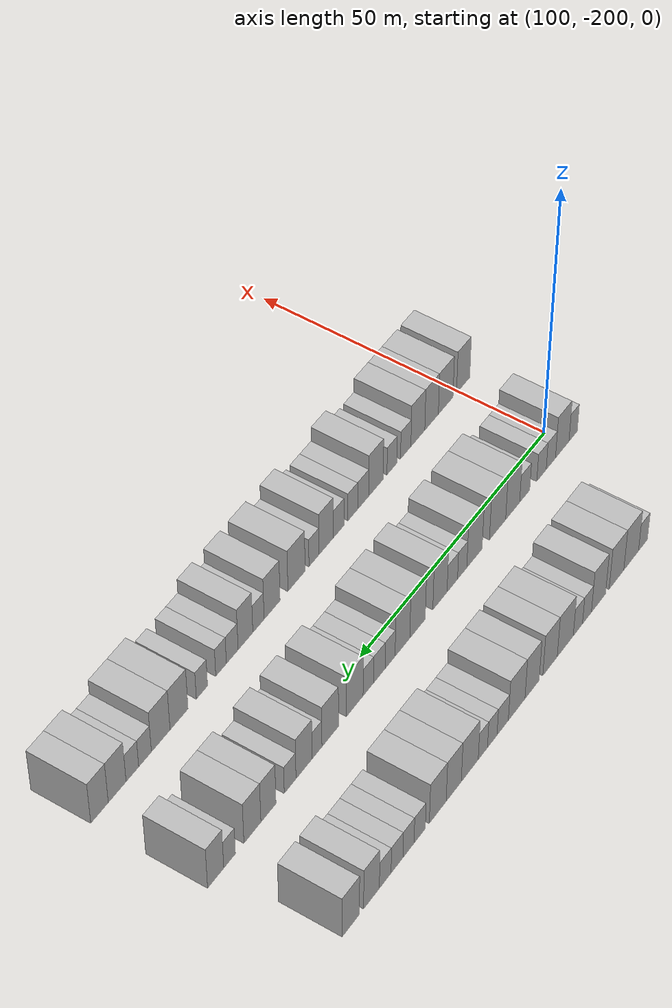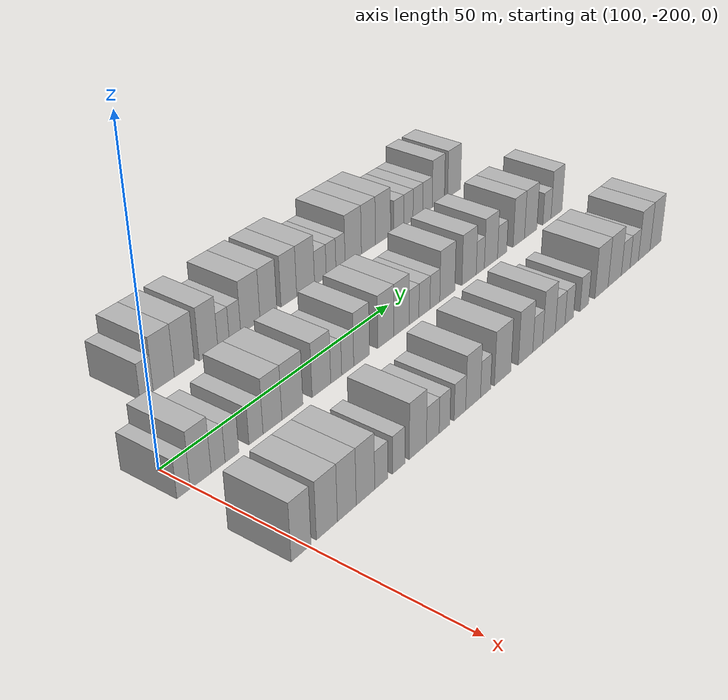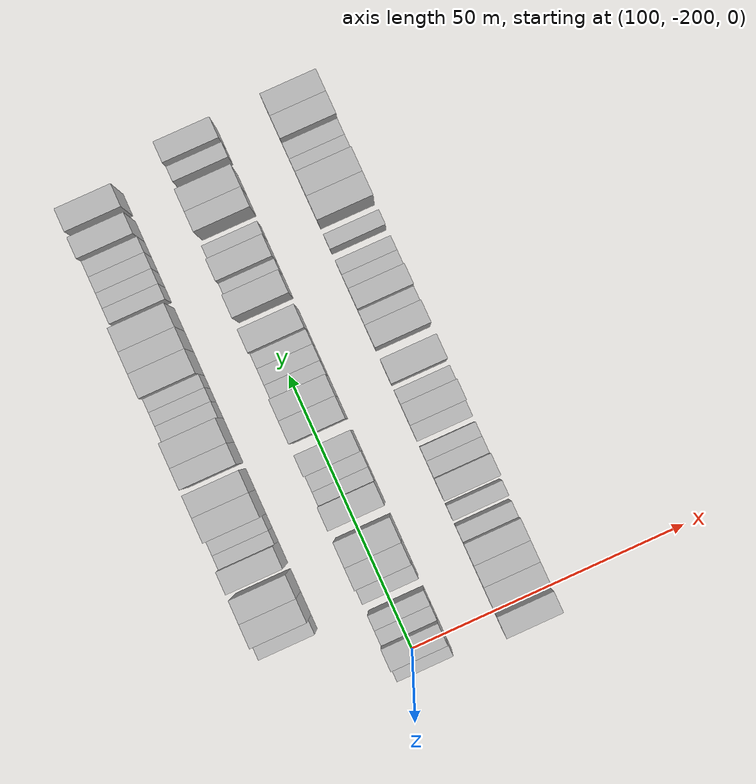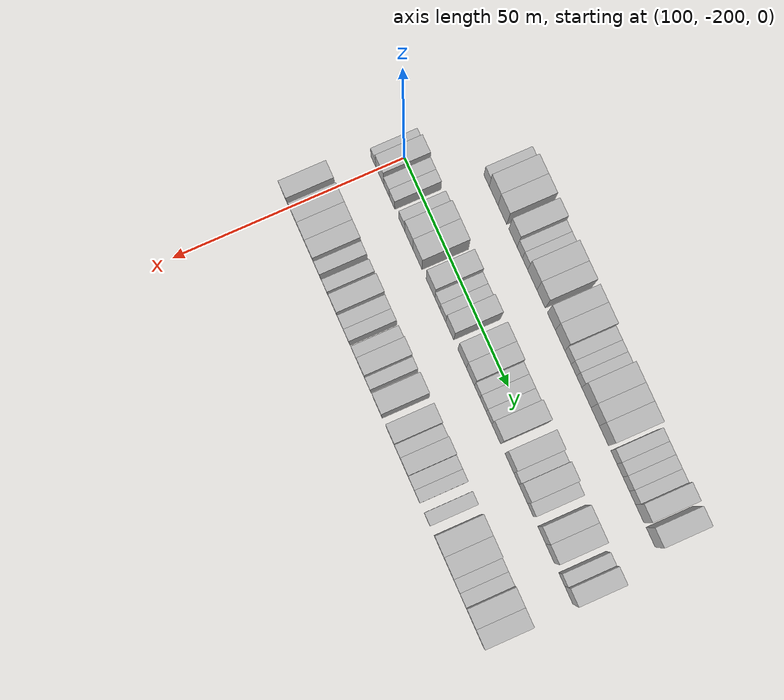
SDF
<sdf version="1.6">
 <world name="default">
  <model name="building_538">
   <static>1</static>
   <pose>82.0000 -189.1456 0 0.000000 0.000000 0.000000</pose>
   <link name="link">
    <pose>0 0 3.00 0 0 0</pose>
    <collision name="collision"><geometry><box><size>10.0000 2.5869 6.0000</size></box></geometry></collision>
    <visual name="visual">
     <cast_shadows>0</cast_shadows>
     <geometry><box><size>10.0000 2.5869 6.0000</size></box></geometry>
     <material>
      <script>
       <uri>model://HANNAS_wall/materials/scripts</uri>
       <uri>model://HANNAS_wall/materials/textures</uri>
       <name>vrc/HANNAS_wall</name>
      </script>
     </material>
    </visual>
   </link>
  </model>
  <model name="building_539">
   <static>1</static>
   <pose>82.0000 -185.7455 0 0.000000 0.000000 0.000000</pose>
   <link name="link">
    <pose>0 0 4.50 0 0 0</pose>
    <collision name="collision"><geometry><box><size>10.0000 4.2132 9.0000</size></box></geometry></collision>
    <visual name="visual">
     <cast_shadows>0</cast_shadows>
     <geometry><box><size>10.0000 4.2132 9.0000</size></box></geometry>
     <material>
      <script>
       <uri>model://HANNAS_wall/materials/scripts</uri>
       <uri>model://HANNAS_wall/materials/textures</uri>
       <name>vrc/HANNAS_wall</name>
      </script>
     </material>
    </visual>
   </link>
  </model>
  <model name="building_540">
   <static>1</static>
   <pose>82.0000 -181.5545 0 0.000000 0.000000 0.000000</pose>
   <link name="link">
    <pose>0 0 4.50 0 0 0</pose>
    <collision name="collision"><geometry><box><size>10.0000 4.1687 9.0000</size></box></geometry></collision>
    <visual name="visual">
     <cast_shadows>0</cast_shadows>
     <geometry><box><size>10.0000 4.1687 9.0000</size></box></geometry>
     <material>
      <script>
       <uri>model://HANNAS_wall/materials/scripts</uri>
       <uri>model://HANNAS_wall/materials/textures</uri>
       <name>vrc/HANNAS_wall</name>
      </script>
     </material>
    </visual>
   </link>
  </model>
  <model name="building_541">
   <static>1</static>
   <pose>82.0000 -176.4851 0 0.000000 0.000000 0.000000</pose>
   <link name="link">
    <pose>0 0 4.50 0 0 0</pose>
    <collision name="collision"><geometry><box><size>10.0000 3.9702 9.0000</size></box></geometry></collision>
    <visual name="visual">
     <cast_shadows>0</cast_shadows>
     <geometry><box><size>10.0000 3.9702 9.0000</size></box></geometry>
     <material>
      <script>
       <uri>model://HANNAS_wall/materials/scripts</uri>
       <uri>model://HANNAS_wall/materials/textures</uri>
       <name>vrc/HANNAS_wall</name>
      </script>
     </material>
    </visual>
   </link>
  </model>
  <model name="building_542">
   <static>1</static>
   <pose>82.0000 -173.2565 0 0.000000 0.000000 0.000000</pose>
   <link name="link">
    <pose>0 0 3.00 0 0 0</pose>
    <collision name="collision"><geometry><box><size>10.0000 2.4871 6.0000</size></box></geometry></collision>
    <visual name="visual">
     <cast_shadows>0</cast_shadows>
     <geometry><box><size>10.0000 2.4871 6.0000</size></box></geometry>
     <material>
      <script>
       <uri>model://HANNAS_wall/materials/scripts</uri>
       <uri>model://HANNAS_wall/materials/textures</uri>
       <name>vrc/HANNAS_wall</name>
      </script>
     </material>
    </visual>
   </link>
  </model>
  <model name="building_543">
   <static>1</static>
   <pose>82.0000 -170.7408 0 0.000000 0.000000 0.000000</pose>
   <link name="link">
    <pose>0 0 3.00 0 0 0</pose>
    <collision name="collision"><geometry><box><size>10.0000 2.5442 6.0000</size></box></geometry></collision>
    <visual name="visual">
     <cast_shadows>0</cast_shadows>
     <geometry><box><size>10.0000 2.5442 6.0000</size></box></geometry>
     <material>
      <script>
       <uri>model://HANNAS_wall/materials/scripts</uri>
       <uri>model://HANNAS_wall/materials/textures</uri>
       <name>vrc/HANNAS_wall</name>
      </script>
     </material>
    </visual>
   </link>
  </model>
  <model name="building_544">
   <static>1</static>
   <pose>82.0000 -167.2731 0 0.000000 0.000000 0.000000</pose>
   <link name="link">
    <pose>0 0 4.50 0 0 0</pose>
    <collision name="collision"><geometry><box><size>10.0000 4.3912 9.0000</size></box></geometry></collision>
    <visual name="visual">
     <cast_shadows>0</cast_shadows>
     <geometry><box><size>10.0000 4.3912 9.0000</size></box></geometry>
     <material>
      <script>
       <uri>model://HANNAS_wall/materials/scripts</uri>
       <uri>model://HANNAS_wall/materials/textures</uri>
       <name>vrc/HANNAS_wall</name>
      </script>
     </material>
    </visual>
   </link>
  </model>
  <model name="building_545">
   <static>1</static>
   <pose>82.0000 -163.1152 0 0.000000 0.000000 0.000000</pose>
   <link name="link">
    <pose>0 0 4.50 0 0 0</pose>
    <collision name="collision"><geometry><box><size>10.0000 3.9246 9.0000</size></box></geometry></collision>
    <visual name="visual">
     <cast_shadows>0</cast_shadows>
     <geometry><box><size>10.0000 3.9246 9.0000</size></box></geometry>
     <material>
      <script>
       <uri>model://HANNAS_wall/materials/scripts</uri>
       <uri>model://HANNAS_wall/materials/textures</uri>
       <name>vrc/HANNAS_wall</name>
      </script>
     </material>
    </visual>
   </link>
  </model>
  <model name="building_546">
   <static>1</static>
   <pose>82.0000 -158.2578 0 0.000000 0.000000 0.000000</pose>
   <link name="link">
    <pose>0 0 4.50 0 0 0</pose>
    <collision name="collision"><geometry><box><size>10.0000 3.7901 9.0000</size></box></geometry></collision>
    <visual name="visual">
     <cast_shadows>0</cast_shadows>
     <geometry><box><size>10.0000 3.7901 9.0000</size></box></geometry>
     <material>
      <script>
       <uri>model://HANNAS_wall/materials/scripts</uri>
       <uri>model://HANNAS_wall/materials/textures</uri>
       <name>vrc/HANNAS_wall</name>
      </script>
     </material>
    </visual>
   </link>
  </model>
  <model name="building_547">
   <static>1</static>
   <pose>82.0000 -154.1495 0 0.000000 0.000000 0.000000</pose>
   <link name="link">
    <pose>0 0 4.50 0 0 0</pose>
    <collision name="collision"><geometry><box><size>10.0000 4.4265 9.0000</size></box></geometry></collision>
    <visual name="visual">
     <cast_shadows>0</cast_shadows>
     <geometry><box><size>10.0000 4.4265 9.0000</size></box></geometry>
     <material>
      <script>
       <uri>model://HANNAS_wall/materials/scripts</uri>
       <uri>model://HANNAS_wall/materials/textures</uri>
       <name>vrc/HANNAS_wall</name>
      </script>
     </material>
    </visual>
   </link>
  </model>
  <model name="building_548">
   <static>1</static>
   <pose>82.0000 -150.4503 0 0.000000 0.000000 0.000000</pose>
   <link name="link">
    <pose>0 0 3.00 0 0 0</pose>
    <collision name="collision"><geometry><box><size>10.0000 2.9718 6.0000</size></box></geometry></collision>
    <visual name="visual">
     <cast_shadows>0</cast_shadows>
     <geometry><box><size>10.0000 2.9718 6.0000</size></box></geometry>
     <material>
      <script>
       <uri>model://HANNAS_wall/materials/scripts</uri>
       <uri>model://HANNAS_wall/materials/textures</uri>
       <name>vrc/HANNAS_wall</name>
      </script>
     </material>
    </visual>
   </link>
  </model>
  <model name="building_549">
   <static>1</static>
   <pose>82.0000 -147.7179 0 0.000000 0.000000 0.000000</pose>
   <link name="link">
    <pose>0 0 3.00 0 0 0</pose>
    <collision name="collision"><geometry><box><size>10.0000 2.4931 6.0000</size></box></geometry></collision>
    <visual name="visual">
     <cast_shadows>0</cast_shadows>
     <geometry><box><size>10.0000 2.4931 6.0000</size></box></geometry>
     <material>
      <script>
       <uri>model://HANNAS_wall/materials/scripts</uri>
       <uri>model://HANNAS_wall/materials/textures</uri>
       <name>vrc/HANNAS_wall</name>
      </script>
     </material>
    </visual>
   </link>
  </model>
  <model name="building_550">
   <static>1</static>
   <pose>82.0000 -145.2648 0 0.000000 0.000000 0.000000</pose>
   <link name="link">
    <pose>0 0 3.00 0 0 0</pose>
    <collision name="collision"><geometry><box><size>10.0000 2.4132 6.0000</size></box></geometry></collision>
    <visual name="visual">
     <cast_shadows>0</cast_shadows>
     <geometry><box><size>10.0000 2.4132 6.0000</size></box></geometry>
     <material>
      <script>
       <uri>model://HANNAS_wall/materials/scripts</uri>
       <uri>model://HANNAS_wall/materials/textures</uri>
       <name>vrc/HANNAS_wall</name>
      </script>
     </material>
    </visual>
   </link>
  </model>
  <model name="building_551">
   <static>1</static>
   <pose>82.0000 -141.8762 0 0.000000 0.000000 0.000000</pose>
   <link name="link">
    <pose>0 0 4.50 0 0 0</pose>
    <collision name="collision"><geometry><box><size>10.0000 4.3640 9.0000</size></box></geometry></collision>
    <visual name="visual">
     <cast_shadows>0</cast_shadows>
     <geometry><box><size>10.0000 4.3640 9.0000</size></box></geometry>
     <material>
      <script>
       <uri>model://HANNAS_wall/materials/scripts</uri>
       <uri>model://HANNAS_wall/materials/textures</uri>
       <name>vrc/HANNAS_wall</name>
      </script>
     </material>
    </visual>
   </link>
  </model>
  <model name="building_552">
   <static>1</static>
   <pose>82.0000 -137.7638 0 0.000000 0.000000 0.000000</pose>
   <link name="link">
    <pose>0 0 4.50 0 0 0</pose>
    <collision name="collision"><geometry><box><size>10.0000 3.8608 9.0000</size></box></geometry></collision>
    <visual name="visual">
     <cast_shadows>0</cast_shadows>
     <geometry><box><size>10.0000 3.8608 9.0000</size></box></geometry>
     <material>
      <script>
       <uri>model://HANNAS_wall/materials/scripts</uri>
       <uri>model://HANNAS_wall/materials/textures</uri>
       <name>vrc/HANNAS_wall</name>
      </script>
     </material>
    </visual>
   </link>
  </model>
  <model name="building_553">
   <static>1</static>
   <pose>82.0000 -133.7019 0 0.000000 0.000000 0.000000</pose>
   <link name="link">
    <pose>0 0 4.50 0 0 0</pose>
    <collision name="collision"><geometry><box><size>10.0000 4.2629 9.0000</size></box></geometry></collision>
    <visual name="visual">
     <cast_shadows>0</cast_shadows>
     <geometry><box><size>10.0000 4.2629 9.0000</size></box></geometry>
     <material>
      <script>
       <uri>model://HANNAS_wall/materials/scripts</uri>
       <uri>model://HANNAS_wall/materials/textures</uri>
       <name>vrc/HANNAS_wall</name>
      </script>
     </material>
    </visual>
   </link>
  </model>
  <model name="building_554">
   <static>1</static>
   <pose>82.0000 -129.1655 0 0.000000 0.000000 0.000000</pose>
   <link name="link">
    <pose>0 0 3.00 0 0 0</pose>
    <collision name="collision"><geometry><box><size>10.0000 2.8100 6.0000</size></box></geometry></collision>
    <visual name="visual">
     <cast_shadows>0</cast_shadows>
     <geometry><box><size>10.0000 2.8100 6.0000</size></box></geometry>
     <material>
      <script>
       <uri>model://HANNAS_wall/materials/scripts</uri>
       <uri>model://HANNAS_wall/materials/textures</uri>
       <name>vrc/HANNAS_wall</name>
      </script>
     </material>
    </visual>
   </link>
  </model>
  <model name="building_555">
   <static>1</static>
   <pose>82.0000 -126.3873 0 0.000000 0.000000 0.000000</pose>
   <link name="link">
    <pose>0 0 3.00 0 0 0</pose>
    <collision name="collision"><geometry><box><size>10.0000 2.7464 6.0000</size></box></geometry></collision>
    <visual name="visual">
     <cast_shadows>0</cast_shadows>
     <geometry><box><size>10.0000 2.7464 6.0000</size></box></geometry>
     <material>
      <script>
       <uri>model://HANNAS_wall/materials/scripts</uri>
       <uri>model://HANNAS_wall/materials/textures</uri>
       <name>vrc/HANNAS_wall</name>
      </script>
     </material>
    </visual>
   </link>
  </model>
  <model name="building_556">
   <static>1</static>
   <pose>82.0000 -123.5469 0 0.000000 0.000000 0.000000</pose>
   <link name="link">
    <pose>0 0 3.00 0 0 0</pose>
    <collision name="collision"><geometry><box><size>10.0000 2.9344 6.0000</size></box></geometry></collision>
    <visual name="visual">
     <cast_shadows>0</cast_shadows>
     <geometry><box><size>10.0000 2.9344 6.0000</size></box></geometry>
     <material>
      <script>
       <uri>model://HANNAS_wall/materials/scripts</uri>
       <uri>model://HANNAS_wall/materials/textures</uri>
       <name>vrc/HANNAS_wall</name>
      </script>
     </material>
    </visual>
   </link>
  </model>
  <model name="building_557">
   <static>1</static>
   <pose>82.0000 -120.6530 0 0.000000 0.000000 0.000000</pose>
   <link name="link">
    <pose>0 0 3.00 0 0 0</pose>
    <collision name="collision"><geometry><box><size>10.0000 2.8533 6.0000</size></box></geometry></collision>
    <visual name="visual">
     <cast_shadows>0</cast_shadows>
     <geometry><box><size>10.0000 2.8533 6.0000</size></box></geometry>
     <material>
      <script>
       <uri>model://HANNAS_wall/materials/scripts</uri>
       <uri>model://HANNAS_wall/materials/textures</uri>
       <name>vrc/HANNAS_wall</name>
      </script>
     </material>
    </visual>
   </link>
  </model>
  <model name="building_558">
   <static>1</static>
   <pose>82.0000 -117.3178 0 0.000000 0.000000 0.000000</pose>
   <link name="link">
    <pose>0 0 4.50 0 0 0</pose>
    <collision name="collision"><geometry><box><size>10.0000 3.8171 9.0000</size></box></geometry></collision>
    <visual name="visual">
     <cast_shadows>0</cast_shadows>
     <geometry><box><size>10.0000 3.8171 9.0000</size></box></geometry>
     <material>
      <script>
       <uri>model://HANNAS_wall/materials/scripts</uri>
       <uri>model://HANNAS_wall/materials/textures</uri>
       <name>vrc/HANNAS_wall</name>
      </script>
     </material>
    </visual>
   </link>
  </model>
  <model name="building_559">
   <static>1</static>
   <pose>82.0000 -112.3415 0 0.000000 0.000000 0.000000</pose>
   <link name="link">
    <pose>0 0 4.50 0 0 0</pose>
    <collision name="collision"><geometry><box><size>10.0000 4.1355 9.0000</size></box></geometry></collision>
    <visual name="visual">
     <cast_shadows>0</cast_shadows>
     <geometry><box><size>10.0000 4.1355 9.0000</size></box></geometry>
     <material>
      <script>
       <uri>model://HANNAS_wall/materials/scripts</uri>
       <uri>model://HANNAS_wall/materials/textures</uri>
       <name>vrc/HANNAS_wall</name>
      </script>
     </material>
    </visual>
   </link>
  </model>
  <model name="building_717">
   <static>1</static>
   <pose>101.0000 -201.6408 0 0.000000 0.000000 0.000000</pose>
   <link name="link">
    <pose>0 0 3.00 0 0 0</pose>
    <collision name="collision"><geometry><box><size>10.0000 2.4165 6.0000</size></box></geometry></collision>
    <visual name="visual">
     <cast_shadows>0</cast_shadows>
     <geometry><box><size>10.0000 2.4165 6.0000</size></box></geometry>
     <material>
      <script>
       <uri>model://HANNAS_wall/materials/scripts</uri>
       <uri>model://HANNAS_wall/materials/textures</uri>
       <name>vrc/HANNAS_wall</name>
      </script>
     </material>
    </visual>
   </link>
  </model>
  <model name="building_718">
   <static>1</static>
   <pose>101.0000 -198.4860 0 0.000000 0.000000 0.000000</pose>
   <link name="link">
    <pose>0 0 4.50 0 0 0</pose>
    <collision name="collision"><geometry><box><size>10.0000 3.8929 9.0000</size></box></geometry></collision>
    <visual name="visual">
     <cast_shadows>0</cast_shadows>
     <geometry><box><size>10.0000 3.8929 9.0000</size></box></geometry>
     <material>
      <script>
       <uri>model://HANNAS_wall/materials/scripts</uri>
       <uri>model://HANNAS_wall/materials/textures</uri>
       <name>vrc/HANNAS_wall</name>
      </script>
     </material>
    </visual>
   </link>
  </model>
  <model name="building_719">
   <static>1</static>
   <pose>101.0000 -195.2122 0 0.000000 0.000000 0.000000</pose>
   <link name="link">
    <pose>0 0 3.00 0 0 0</pose>
    <collision name="collision"><geometry><box><size>10.0000 2.6547 6.0000</size></box></geometry></collision>
    <visual name="visual">
     <cast_shadows>0</cast_shadows>
     <geometry><box><size>10.0000 2.6547 6.0000</size></box></geometry>
     <material>
      <script>
       <uri>model://HANNAS_wall/materials/scripts</uri>
       <uri>model://HANNAS_wall/materials/textures</uri>
       <name>vrc/HANNAS_wall</name>
      </script>
     </material>
    </visual>
   </link>
  </model>
  <model name="building_720">
   <static>1</static>
   <pose>101.0000 -192.5493 0 0.000000 0.000000 0.000000</pose>
   <link name="link">
    <pose>0 0 3.00 0 0 0</pose>
    <collision name="collision"><geometry><box><size>10.0000 2.6712 6.0000</size></box></geometry></collision>
    <visual name="visual">
     <cast_shadows>0</cast_shadows>
     <geometry><box><size>10.0000 2.6712 6.0000</size></box></geometry>
     <material>
      <script>
       <uri>model://HANNAS_wall/materials/scripts</uri>
       <uri>model://HANNAS_wall/materials/textures</uri>
       <name>vrc/HANNAS_wall</name>
      </script>
     </material>
    </visual>
   </link>
  </model>
  <model name="building_721">
   <static>1</static>
   <pose>101.0000 -187.7872 0 0.000000 0.000000 0.000000</pose>
   <link name="link">
    <pose>0 0 3.00 0 0 0</pose>
    <collision name="collision"><geometry><box><size>10.0000 2.8529 6.0000</size></box></geometry></collision>
    <visual name="visual">
     <cast_shadows>0</cast_shadows>
     <geometry><box><size>10.0000 2.8529 6.0000</size></box></geometry>
     <material>
      <script>
       <uri>model://HANNAS_wall/materials/scripts</uri>
       <uri>model://HANNAS_wall/materials/textures</uri>
       <name>vrc/HANNAS_wall</name>
      </script>
     </material>
    </visual>
   </link>
  </model>
  <model name="building_722">
   <static>1</static>
   <pose>101.0000 -184.4069 0 0.000000 0.000000 0.000000</pose>
   <link name="link">
    <pose>0 0 4.50 0 0 0</pose>
    <collision name="collision"><geometry><box><size>10.0000 3.9077 9.0000</size></box></geometry></collision>
    <visual name="visual">
     <cast_shadows>0</cast_shadows>
     <geometry><box><size>10.0000 3.9077 9.0000</size></box></geometry>
     <material>
      <script>
       <uri>model://HANNAS_wall/materials/scripts</uri>
       <uri>model://HANNAS_wall/materials/textures</uri>
       <name>vrc/HANNAS_wall</name>
      </script>
     </material>
    </visual>
   </link>
  </model>
  <model name="building_723">
   <static>1</static>
   <pose>101.0000 -180.2089 0 0.000000 0.000000 0.000000</pose>
   <link name="link">
    <pose>0 0 4.50 0 0 0</pose>
    <collision name="collision"><geometry><box><size>10.0000 4.4883 9.0000</size></box></geometry></collision>
    <visual name="visual">
     <cast_shadows>0</cast_shadows>
     <geometry><box><size>10.0000 4.4883 9.0000</size></box></geometry>
     <material>
      <script>
       <uri>model://HANNAS_wall/materials/scripts</uri>
       <uri>model://HANNAS_wall/materials/textures</uri>
       <name>vrc/HANNAS_wall</name>
      </script>
     </material>
    </visual>
   </link>
  </model>
  <model name="building_724">
   <static>1</static>
   <pose>101.0000 -173.8768 0 0.000000 0.000000 0.000000</pose>
   <link name="link">
    <pose>0 0 4.50 0 0 0</pose>
    <collision name="collision"><geometry><box><size>10.0000 4.1759 9.0000</size></box></geometry></collision>
    <visual name="visual">
     <cast_shadows>0</cast_shadows>
     <geometry><box><size>10.0000 4.1759 9.0000</size></box></geometry>
     <material>
      <script>
       <uri>model://HANNAS_wall/materials/scripts</uri>
       <uri>model://HANNAS_wall/materials/textures</uri>
       <name>vrc/HANNAS_wall</name>
      </script>
     </material>
    </visual>
   </link>
  </model>
  <model name="building_725">
   <static>1</static>
   <pose>101.0000 -170.5382 0 0.000000 0.000000 0.000000</pose>
   <link name="link">
    <pose>0 0 3.00 0 0 0</pose>
    <collision name="collision"><geometry><box><size>10.0000 2.5013 6.0000</size></box></geometry></collision>
    <visual name="visual">
     <cast_shadows>0</cast_shadows>
     <geometry><box><size>10.0000 2.5013 6.0000</size></box></geometry>
     <material>
      <script>
       <uri>model://HANNAS_wall/materials/scripts</uri>
       <uri>model://HANNAS_wall/materials/textures</uri>
       <name>vrc/HANNAS_wall</name>
      </script>
     </material>
    </visual>
   </link>
  </model>
  <model name="building_726">
   <static>1</static>
   <pose>101.0000 -167.8800 0 0.000000 0.000000 0.000000</pose>
   <link name="link">
    <pose>0 0 3.00 0 0 0</pose>
    <collision name="collision"><geometry><box><size>10.0000 2.8152 6.0000</size></box></geometry></collision>
    <visual name="visual">
     <cast_shadows>0</cast_shadows>
     <geometry><box><size>10.0000 2.8152 6.0000</size></box></geometry>
     <material>
      <script>
       <uri>model://HANNAS_wall/materials/scripts</uri>
       <uri>model://HANNAS_wall/materials/textures</uri>
       <name>vrc/HANNAS_wall</name>
      </script>
     </material>
    </visual>
   </link>
  </model>
  <model name="building_727">
   <static>1</static>
   <pose>101.0000 -164.5750 0 0.000000 0.000000 0.000000</pose>
   <link name="link">
    <pose>0 0 4.50 0 0 0</pose>
    <collision name="collision"><geometry><box><size>10.0000 3.7948 9.0000</size></box></geometry></collision>
    <visual name="visual">
     <cast_shadows>0</cast_shadows>
     <geometry><box><size>10.0000 3.7948 9.0000</size></box></geometry>
     <material>
      <script>
       <uri>model://HANNAS_wall/materials/scripts</uri>
       <uri>model://HANNAS_wall/materials/textures</uri>
       <name>vrc/HANNAS_wall</name>
      </script>
     </material>
    </visual>
   </link>
  </model>
  <model name="building_728">
   <static>1</static>
   <pose>101.0000 -158.6505 0 0.000000 0.000000 0.000000</pose>
   <link name="link">
    <pose>0 0 4.50 0 0 0</pose>
    <collision name="collision"><geometry><box><size>10.0000 4.0543 9.0000</size></box></geometry></collision>
    <visual name="visual">
     <cast_shadows>0</cast_shadows>
     <geometry><box><size>10.0000 4.0543 9.0000</size></box></geometry>
     <material>
      <script>
       <uri>model://HANNAS_wall/materials/scripts</uri>
       <uri>model://HANNAS_wall/materials/textures</uri>
       <name>vrc/HANNAS_wall</name>
      </script>
     </material>
    </visual>
   </link>
  </model>
  <model name="building_729">
   <static>1</static>
   <pose>101.0000 -154.7051 0 0.000000 0.000000 0.000000</pose>
   <link name="link">
    <pose>0 0 4.50 0 0 0</pose>
    <collision name="collision"><geometry><box><size>10.0000 3.8364 9.0000</size></box></geometry></collision>
    <visual name="visual">
     <cast_shadows>0</cast_shadows>
     <geometry><box><size>10.0000 3.8364 9.0000</size></box></geometry>
     <material>
      <script>
       <uri>model://HANNAS_wall/materials/scripts</uri>
       <uri>model://HANNAS_wall/materials/textures</uri>
       <name>vrc/HANNAS_wall</name>
      </script>
     </material>
    </visual>
   </link>
  </model>
  <model name="building_730">
   <static>1</static>
   <pose>101.0000 -151.4924 0 0.000000 0.000000 0.000000</pose>
   <link name="link">
    <pose>0 0 3.00 0 0 0</pose>
    <collision name="collision"><geometry><box><size>10.0000 2.5890 6.0000</size></box></geometry></collision>
    <visual name="visual">
     <cast_shadows>0</cast_shadows>
     <geometry><box><size>10.0000 2.5890 6.0000</size></box></geometry>
     <material>
      <script>
       <uri>model://HANNAS_wall/materials/scripts</uri>
       <uri>model://HANNAS_wall/materials/textures</uri>
       <name>vrc/HANNAS_wall</name>
      </script>
     </material>
    </visual>
   </link>
  </model>
  <model name="building_731">
   <static>1</static>
   <pose>101.0000 -148.7161 0 0.000000 0.000000 0.000000</pose>
   <link name="link">
    <pose>0 0 3.00 0 0 0</pose>
    <collision name="collision"><geometry><box><size>10.0000 2.9636 6.0000</size></box></geometry></collision>
    <visual name="visual">
     <cast_shadows>0</cast_shadows>
     <geometry><box><size>10.0000 2.9636 6.0000</size></box></geometry>
     <material>
      <script>
       <uri>model://HANNAS_wall/materials/scripts</uri>
       <uri>model://HANNAS_wall/materials/textures</uri>
       <name>vrc/HANNAS_wall</name>
      </script>
     </material>
    </visual>
   </link>
  </model>
  <model name="building_732">
   <static>1</static>
   <pose>101.0000 -145.9022 0 0.000000 0.000000 0.000000</pose>
   <link name="link">
    <pose>0 0 3.00 0 0 0</pose>
    <collision name="collision"><geometry><box><size>10.0000 2.6643 6.0000</size></box></geometry></collision>
    <visual name="visual">
     <cast_shadows>0</cast_shadows>
     <geometry><box><size>10.0000 2.6643 6.0000</size></box></geometry>
     <material>
      <script>
       <uri>model://HANNAS_wall/materials/scripts</uri>
       <uri>model://HANNAS_wall/materials/textures</uri>
       <name>vrc/HANNAS_wall</name>
      </script>
     </material>
    </visual>
   </link>
  </model>
  <model name="building_733">
   <static>1</static>
   <pose>101.0000 -142.4737 0 0.000000 0.000000 0.000000</pose>
   <link name="link">
    <pose>0 0 4.50 0 0 0</pose>
    <collision name="collision"><geometry><box><size>10.0000 4.1926 9.0000</size></box></geometry></collision>
    <visual name="visual">
     <cast_shadows>0</cast_shadows>
     <geometry><box><size>10.0000 4.1926 9.0000</size></box></geometry>
     <material>
      <script>
       <uri>model://HANNAS_wall/materials/scripts</uri>
       <uri>model://HANNAS_wall/materials/textures</uri>
       <name>vrc/HANNAS_wall</name>
      </script>
     </material>
    </visual>
   </link>
  </model>
  <model name="building_734">
   <static>1</static>
   <pose>101.0000 -136.3137 0 0.000000 0.000000 0.000000</pose>
   <link name="link">
    <pose>0 0 4.50 0 0 0</pose>
    <collision name="collision"><geometry><box><size>10.0000 4.1272 9.0000</size></box></geometry></collision>
    <visual name="visual">
     <cast_shadows>0</cast_shadows>
     <geometry><box><size>10.0000 4.1272 9.0000</size></box></geometry>
     <material>
      <script>
       <uri>model://HANNAS_wall/materials/scripts</uri>
       <uri>model://HANNAS_wall/materials/textures</uri>
       <name>vrc/HANNAS_wall</name>
      </script>
     </material>
    </visual>
   </link>
  </model>
  <model name="building_735">
   <static>1</static>
   <pose>101.0000 -133.0442 0 0.000000 0.000000 0.000000</pose>
   <link name="link">
    <pose>0 0 3.00 0 0 0</pose>
    <collision name="collision"><geometry><box><size>10.0000 2.4119 6.0000</size></box></geometry></collision>
    <visual name="visual">
     <cast_shadows>0</cast_shadows>
     <geometry><box><size>10.0000 2.4119 6.0000</size></box></geometry>
     <material>
      <script>
       <uri>model://HANNAS_wall/materials/scripts</uri>
       <uri>model://HANNAS_wall/materials/textures</uri>
       <name>vrc/HANNAS_wall</name>
      </script>
     </material>
    </visual>
   </link>
  </model>
  <model name="building_736">
   <static>1</static>
   <pose>101.0000 -129.8574 0 0.000000 0.000000 0.000000</pose>
   <link name="link">
    <pose>0 0 4.50 0 0 0</pose>
    <collision name="collision"><geometry><box><size>10.0000 3.9615 9.0000</size></box></geometry></collision>
    <visual name="visual">
     <cast_shadows>0</cast_shadows>
     <geometry><box><size>10.0000 3.9615 9.0000</size></box></geometry>
     <material>
      <script>
       <uri>model://HANNAS_wall/materials/scripts</uri>
       <uri>model://HANNAS_wall/materials/textures</uri>
       <name>vrc/HANNAS_wall</name>
      </script>
     </material>
    </visual>
   </link>
  </model>
  <model name="building_737">
   <static>1</static>
   <pose>101.0000 -126.4533 0 0.000000 0.000000 0.000000</pose>
   <link name="link">
    <pose>0 0 3.00 0 0 0</pose>
    <collision name="collision"><geometry><box><size>10.0000 2.8467 6.0000</size></box></geometry></collision>
    <visual name="visual">
     <cast_shadows>0</cast_shadows>
     <geometry><box><size>10.0000 2.8467 6.0000</size></box></geometry>
     <material>
      <script>
       <uri>model://HANNAS_wall/materials/scripts</uri>
       <uri>model://HANNAS_wall/materials/textures</uri>
       <name>vrc/HANNAS_wall</name>
      </script>
     </material>
    </visual>
   </link>
  </model>
  <model name="building_738">
   <static>1</static>
   <pose>101.0000 -121.2195 0 0.000000 0.000000 0.000000</pose>
   <link name="link">
    <pose>0 0 4.50 0 0 0</pose>
    <collision name="collision"><geometry><box><size>10.0000 3.6210 9.0000</size></box></geometry></collision>
    <visual name="visual">
     <cast_shadows>0</cast_shadows>
     <geometry><box><size>10.0000 3.6210 9.0000</size></box></geometry>
     <material>
      <script>
       <uri>model://HANNAS_wall/materials/scripts</uri>
       <uri>model://HANNAS_wall/materials/textures</uri>
       <name>vrc/HANNAS_wall</name>
      </script>
     </material>
    </visual>
   </link>
  </model>
  <model name="building_739">
   <static>1</static>
   <pose>101.0000 -117.3942 0 0.000000 0.000000 0.000000</pose>
   <link name="link">
    <pose>0 0 4.50 0 0 0</pose>
    <collision name="collision"><geometry><box><size>10.0000 4.0297 9.0000</size></box></geometry></collision>
    <visual name="visual">
     <cast_shadows>0</cast_shadows>
     <geometry><box><size>10.0000 4.0297 9.0000</size></box></geometry>
     <material>
      <script>
       <uri>model://HANNAS_wall/materials/scripts</uri>
       <uri>model://HANNAS_wall/materials/textures</uri>
       <name>vrc/HANNAS_wall</name>
      </script>
     </material>
    </visual>
   </link>
  </model>
  <model name="building_740">
   <static>1</static>
   <pose>101.0000 -112.0099 0 0.000000 0.000000 0.000000</pose>
   <link name="link">
    <pose>0 0 3.00 0 0 0</pose>
    <collision name="collision"><geometry><box><size>10.0000 2.7388 6.0000</size></box></geometry></collision>
    <visual name="visual">
     <cast_shadows>0</cast_shadows>
     <geometry><box><size>10.0000 2.7388 6.0000</size></box></geometry>
     <material>
      <script>
       <uri>model://HANNAS_wall/materials/scripts</uri>
       <uri>model://HANNAS_wall/materials/textures</uri>
       <name>vrc/HANNAS_wall</name>
      </script>
     </material>
    </visual>
   </link>
  </model>
  <model name="building_741">
   <static>1</static>
   <pose>101.0000 -108.7604 0 0.000000 0.000000 0.000000</pose>
   <link name="link">
    <pose>0 0 4.50 0 0 0</pose>
    <collision name="collision"><geometry><box><size>10.0000 3.7602 9.0000</size></box></geometry></collision>
    <visual name="visual">
     <cast_shadows>0</cast_shadows>
     <geometry><box><size>10.0000 3.7602 9.0000</size></box></geometry>
     <material>
      <script>
       <uri>model://HANNAS_wall/materials/scripts</uri>
       <uri>model://HANNAS_wall/materials/textures</uri>
       <name>vrc/HANNAS_wall</name>
      </script>
     </material>
    </visual>
   </link>
  </model>
  <model name="building_884">
   <static>1</static>
   <pose>120.0000 -201.4327 0 0.000000 0.000000 0.000000</pose>
   <link name="link">
    <pose>0 0 4.50 0 0 0</pose>
    <collision name="collision"><geometry><box><size>10.0000 3.7463 9.0000</size></box></geometry></collision>
    <visual name="visual">
     <cast_shadows>0</cast_shadows>
     <geometry><box><size>10.0000 3.7463 9.0000</size></box></geometry>
     <material>
      <script>
       <uri>model://HANNAS_wall/materials/scripts</uri>
       <uri>model://HANNAS_wall/materials/textures</uri>
       <name>vrc/HANNAS_wall</name>
      </script>
     </material>
    </visual>
   </link>
  </model>
  <model name="building_885">
   <static>1</static>
   <pose>120.0000 -196.5032 0 0.000000 0.000000 0.000000</pose>
   <link name="link">
    <pose>0 0 4.50 0 0 0</pose>
    <collision name="collision"><geometry><box><size>10.0000 4.1128 9.0000</size></box></geometry></collision>
    <visual name="visual">
     <cast_shadows>0</cast_shadows>
     <geometry><box><size>10.0000 4.1128 9.0000</size></box></geometry>
     <material>
      <script>
       <uri>model://HANNAS_wall/materials/scripts</uri>
       <uri>model://HANNAS_wall/materials/textures</uri>
       <name>vrc/HANNAS_wall</name>
      </script>
     </material>
    </visual>
   </link>
  </model>
  <model name="building_886">
   <static>1</static>
   <pose>120.0000 -192.5569 0 0.000000 0.000000 0.000000</pose>
   <link name="link">
    <pose>0 0 4.50 0 0 0</pose>
    <collision name="collision"><geometry><box><size>10.0000 3.7797 9.0000</size></box></geometry></collision>
    <visual name="visual">
     <cast_shadows>0</cast_shadows>
     <geometry><box><size>10.0000 3.7797 9.0000</size></box></geometry>
     <material>
      <script>
       <uri>model://HANNAS_wall/materials/scripts</uri>
       <uri>model://HANNAS_wall/materials/textures</uri>
       <name>vrc/HANNAS_wall</name>
      </script>
     </material>
    </visual>
   </link>
  </model>
  <model name="building_887">
   <static>1</static>
   <pose>120.0000 -188.7474 0 0.000000 0.000000 0.000000</pose>
   <link name="link">
    <pose>0 0 4.50 0 0 0</pose>
    <collision name="collision"><geometry><box><size>10.0000 3.8394 9.0000</size></box></geometry></collision>
    <visual name="visual">
     <cast_shadows>0</cast_shadows>
     <geometry><box><size>10.0000 3.8394 9.0000</size></box></geometry>
     <material>
      <script>
       <uri>model://HANNAS_wall/materials/scripts</uri>
       <uri>model://HANNAS_wall/materials/textures</uri>
       <name>vrc/HANNAS_wall</name>
      </script>
     </material>
    </visual>
   </link>
  </model>
  <model name="building_888">
   <static>1</static>
   <pose>120.0000 -185.4105 0 0.000000 0.000000 0.000000</pose>
   <link name="link">
    <pose>0 0 3.00 0 0 0</pose>
    <collision name="collision"><geometry><box><size>10.0000 2.8343 6.0000</size></box></geometry></collision>
    <visual name="visual">
     <cast_shadows>0</cast_shadows>
     <geometry><box><size>10.0000 2.8343 6.0000</size></box></geometry>
     <material>
      <script>
       <uri>model://HANNAS_wall/materials/scripts</uri>
       <uri>model://HANNAS_wall/materials/textures</uri>
       <name>vrc/HANNAS_wall</name>
      </script>
     </material>
    </visual>
   </link>
  </model>
  <model name="building_889">
   <static>1</static>
   <pose>120.0000 -181.6466 0 0.000000 0.000000 0.000000</pose>
   <link name="link">
    <pose>0 0 3.00 0 0 0</pose>
    <collision name="collision"><geometry><box><size>10.0000 2.6935 6.0000</size></box></geometry></collision>
    <visual name="visual">
     <cast_shadows>0</cast_shadows>
     <geometry><box><size>10.0000 2.6935 6.0000</size></box></geometry>
     <material>
      <script>
       <uri>model://HANNAS_wall/materials/scripts</uri>
       <uri>model://HANNAS_wall/materials/textures</uri>
       <name>vrc/HANNAS_wall</name>
      </script>
     </material>
    </visual>
   </link>
  </model>
  <model name="building_890">
   <static>1</static>
   <pose>120.0000 -177.3487 0 0.000000 0.000000 0.000000</pose>
   <link name="link">
    <pose>0 0 4.50 0 0 0</pose>
    <collision name="collision"><geometry><box><size>10.0000 3.9023 9.0000</size></box></geometry></collision>
    <visual name="visual">
     <cast_shadows>0</cast_shadows>
     <geometry><box><size>10.0000 3.9023 9.0000</size></box></geometry>
     <material>
      <script>
       <uri>model://HANNAS_wall/materials/scripts</uri>
       <uri>model://HANNAS_wall/materials/textures</uri>
       <name>vrc/HANNAS_wall</name>
      </script>
     </material>
    </visual>
   </link>
  </model>
  <model name="building_891">
   <static>1</static>
   <pose>120.0000 -173.9106 0 0.000000 0.000000 0.000000</pose>
   <link name="link">
    <pose>0 0 3.00 0 0 0</pose>
    <collision name="collision"><geometry><box><size>10.0000 2.9740 6.0000</size></box></geometry></collision>
    <visual name="visual">
     <cast_shadows>0</cast_shadows>
     <geometry><box><size>10.0000 2.9740 6.0000</size></box></geometry>
     <material>
      <script>
       <uri>model://HANNAS_wall/materials/scripts</uri>
       <uri>model://HANNAS_wall/materials/textures</uri>
       <name>vrc/HANNAS_wall</name>
      </script>
     </material>
    </visual>
   </link>
  </model>
  <model name="building_892">
   <static>1</static>
   <pose>120.0000 -171.1379 0 0.000000 0.000000 0.000000</pose>
   <link name="link">
    <pose>0 0 3.00 0 0 0</pose>
    <collision name="collision"><geometry><box><size>10.0000 2.5713 6.0000</size></box></geometry></collision>
    <visual name="visual">
     <cast_shadows>0</cast_shadows>
     <geometry><box><size>10.0000 2.5713 6.0000</size></box></geometry>
     <material>
      <script>
       <uri>model://HANNAS_wall/materials/scripts</uri>
       <uri>model://HANNAS_wall/materials/textures</uri>
       <name>vrc/HANNAS_wall</name>
      </script>
     </material>
    </visual>
   </link>
  </model>
  <model name="building_893">
   <static>1</static>
   <pose>120.0000 -167.4284 0 0.000000 0.000000 0.000000</pose>
   <link name="link">
    <pose>0 0 3.00 0 0 0</pose>
    <collision name="collision"><geometry><box><size>10.0000 2.8477 6.0000</size></box></geometry></collision>
    <visual name="visual">
     <cast_shadows>0</cast_shadows>
     <geometry><box><size>10.0000 2.8477 6.0000</size></box></geometry>
     <material>
      <script>
       <uri>model://HANNAS_wall/materials/scripts</uri>
       <uri>model://HANNAS_wall/materials/textures</uri>
       <name>vrc/HANNAS_wall</name>
      </script>
     </material>
    </visual>
   </link>
  </model>
  <model name="building_894">
   <static>1</static>
   <pose>120.0000 -164.1395 0 0.000000 0.000000 0.000000</pose>
   <link name="link">
    <pose>0 0 4.50 0 0 0</pose>
    <collision name="collision"><geometry><box><size>10.0000 3.7302 9.0000</size></box></geometry></collision>
    <visual name="visual">
     <cast_shadows>0</cast_shadows>
     <geometry><box><size>10.0000 3.7302 9.0000</size></box></geometry>
     <material>
      <script>
       <uri>model://HANNAS_wall/materials/scripts</uri>
       <uri>model://HANNAS_wall/materials/textures</uri>
       <name>vrc/HANNAS_wall</name>
      </script>
     </material>
    </visual>
   </link>
  </model>
  <model name="building_895">
   <static>1</static>
   <pose>120.0000 -160.9750 0 0.000000 0.000000 0.000000</pose>
   <link name="link">
    <pose>0 0 3.00 0 0 0</pose>
    <collision name="collision"><geometry><box><size>10.0000 2.5988 6.0000</size></box></geometry></collision>
    <visual name="visual">
     <cast_shadows>0</cast_shadows>
     <geometry><box><size>10.0000 2.5988 6.0000</size></box></geometry>
     <material>
      <script>
       <uri>model://HANNAS_wall/materials/scripts</uri>
       <uri>model://HANNAS_wall/materials/textures</uri>
       <name>vrc/HANNAS_wall</name>
      </script>
     </material>
    </visual>
   </link>
  </model>
  <model name="building_896">
   <static>1</static>
   <pose>120.0000 -156.4729 0 0.000000 0.000000 0.000000</pose>
   <link name="link">
    <pose>0 0 4.50 0 0 0</pose>
    <collision name="collision"><geometry><box><size>10.0000 4.4055 9.0000</size></box></geometry></collision>
    <visual name="visual">
     <cast_shadows>0</cast_shadows>
     <geometry><box><size>10.0000 4.4055 9.0000</size></box></geometry>
     <material>
      <script>
       <uri>model://HANNAS_wall/materials/scripts</uri>
       <uri>model://HANNAS_wall/materials/textures</uri>
       <name>vrc/HANNAS_wall</name>
      </script>
     </material>
    </visual>
   </link>
  </model>
  <model name="building_897">
   <static>1</static>
   <pose>120.0000 -150.2569 0 0.000000 0.000000 0.000000</pose>
   <link name="link">
    <pose>0 0 4.50 0 0 0</pose>
    <collision name="collision"><geometry><box><size>10.0000 4.0264 9.0000</size></box></geometry></collision>
    <visual name="visual">
     <cast_shadows>0</cast_shadows>
     <geometry><box><size>10.0000 4.0264 9.0000</size></box></geometry>
     <material>
      <script>
       <uri>model://HANNAS_wall/materials/scripts</uri>
       <uri>model://HANNAS_wall/materials/textures</uri>
       <name>vrc/HANNAS_wall</name>
      </script>
     </material>
    </visual>
   </link>
  </model>
  <model name="building_898">
   <static>1</static>
   <pose>120.0000 -146.8315 0 0.000000 0.000000 0.000000</pose>
   <link name="link">
    <pose>0 0 3.00 0 0 0</pose>
    <collision name="collision"><geometry><box><size>10.0000 2.8245 6.0000</size></box></geometry></collision>
    <visual name="visual">
     <cast_shadows>0</cast_shadows>
     <geometry><box><size>10.0000 2.8245 6.0000</size></box></geometry>
     <material>
      <script>
       <uri>model://HANNAS_wall/materials/scripts</uri>
       <uri>model://HANNAS_wall/materials/textures</uri>
       <name>vrc/HANNAS_wall</name>
      </script>
     </material>
    </visual>
   </link>
  </model>
  <model name="building_899">
   <static>1</static>
   <pose>120.0000 -143.5895 0 0.000000 0.000000 0.000000</pose>
   <link name="link">
    <pose>0 0 4.50 0 0 0</pose>
    <collision name="collision"><geometry><box><size>10.0000 3.6595 9.0000</size></box></geometry></collision>
    <visual name="visual">
     <cast_shadows>0</cast_shadows>
     <geometry><box><size>10.0000 3.6595 9.0000</size></box></geometry>
     <material>
      <script>
       <uri>model://HANNAS_wall/materials/scripts</uri>
       <uri>model://HANNAS_wall/materials/textures</uri>
       <name>vrc/HANNAS_wall</name>
      </script>
     </material>
    </visual>
   </link>
  </model>
  <model name="building_900">
   <static>1</static>
   <pose>120.0000 -140.3107 0 0.000000 0.000000 0.000000</pose>
   <link name="link">
    <pose>0 0 3.00 0 0 0</pose>
    <collision name="collision"><geometry><box><size>10.0000 2.8982 6.0000</size></box></geometry></collision>
    <visual name="visual">
     <cast_shadows>0</cast_shadows>
     <geometry><box><size>10.0000 2.8982 6.0000</size></box></geometry>
     <material>
      <script>
       <uri>model://HANNAS_wall/materials/scripts</uri>
       <uri>model://HANNAS_wall/materials/textures</uri>
       <name>vrc/HANNAS_wall</name>
      </script>
     </material>
    </visual>
   </link>
  </model>
  <model name="building_901">
   <static>1</static>
   <pose>120.0000 -137.5635 0 0.000000 0.000000 0.000000</pose>
   <link name="link">
    <pose>0 0 3.00 0 0 0</pose>
    <collision name="collision"><geometry><box><size>10.0000 2.5963 6.0000</size></box></geometry></collision>
    <visual name="visual">
     <cast_shadows>0</cast_shadows>
     <geometry><box><size>10.0000 2.5963 6.0000</size></box></geometry>
     <material>
      <script>
       <uri>model://HANNAS_wall/materials/scripts</uri>
       <uri>model://HANNAS_wall/materials/textures</uri>
       <name>vrc/HANNAS_wall</name>
      </script>
     </material>
    </visual>
   </link>
  </model>
  <model name="building_902">
   <static>1</static>
   <pose>120.0000 -132.9074 0 0.000000 0.000000 0.000000</pose>
   <link name="link">
    <pose>0 0 3.00 0 0 0</pose>
    <collision name="collision"><geometry><box><size>10.0000 2.7159 6.0000</size></box></geometry></collision>
    <visual name="visual">
     <cast_shadows>0</cast_shadows>
     <geometry><box><size>10.0000 2.7159 6.0000</size></box></geometry>
     <material>
      <script>
       <uri>model://HANNAS_wall/materials/scripts</uri>
       <uri>model://HANNAS_wall/materials/textures</uri>
       <name>vrc/HANNAS_wall</name>
      </script>
     </material>
    </visual>
   </link>
  </model>
  <model name="building_903">
   <static>1</static>
   <pose>120.0000 -127.3988 0 0.000000 0.000000 0.000000</pose>
   <link name="link">
    <pose>0 0 4.50 0 0 0</pose>
    <collision name="collision"><geometry><box><size>10.0000 4.3014 9.0000</size></box></geometry></collision>
    <visual name="visual">
     <cast_shadows>0</cast_shadows>
     <geometry><box><size>10.0000 4.3014 9.0000</size></box></geometry>
     <material>
      <script>
       <uri>model://HANNAS_wall/materials/scripts</uri>
       <uri>model://HANNAS_wall/materials/textures</uri>
       <name>vrc/HANNAS_wall</name>
      </script>
     </material>
    </visual>
   </link>
  </model>
  <model name="building_904">
   <static>1</static>
   <pose>120.0000 -123.0438 0 0.000000 0.000000 0.000000</pose>
   <link name="link">
    <pose>0 0 4.50 0 0 0</pose>
    <collision name="collision"><geometry><box><size>10.0000 4.4085 9.0000</size></box></geometry></collision>
    <visual name="visual">
     <cast_shadows>0</cast_shadows>
     <geometry><box><size>10.0000 4.4085 9.0000</size></box></geometry>
     <material>
      <script>
       <uri>model://HANNAS_wall/materials/scripts</uri>
       <uri>model://HANNAS_wall/materials/textures</uri>
       <name>vrc/HANNAS_wall</name>
      </script>
     </material>
    </visual>
   </link>
  </model>
  <model name="building_905">
   <static>1</static>
   <pose>120.0000 -119.3509 0 0.000000 0.000000 0.000000</pose>
   <link name="link">
    <pose>0 0 3.00 0 0 0</pose>
    <collision name="collision"><geometry><box><size>10.0000 2.9773 6.0000</size></box></geometry></collision>
    <visual name="visual">
     <cast_shadows>0</cast_shadows>
     <geometry><box><size>10.0000 2.9773 6.0000</size></box></geometry>
     <material>
      <script>
       <uri>model://HANNAS_wall/materials/scripts</uri>
       <uri>model://HANNAS_wall/materials/textures</uri>
       <name>vrc/HANNAS_wall</name>
      </script>
     </material>
    </visual>
   </link>
  </model>
  <model name="building_906">
   <static>1</static>
   <pose>120.0000 -116.4000 0 0.000000 0.000000 0.000000</pose>
   <link name="link">
    <pose>0 0 3.00 0 0 0</pose>
    <collision name="collision"><geometry><box><size>10.0000 2.9246 6.0000</size></box></geometry></collision>
    <visual name="visual">
     <cast_shadows>0</cast_shadows>
     <geometry><box><size>10.0000 2.9246 6.0000</size></box></geometry>
     <material>
      <script>
       <uri>model://HANNAS_wall/materials/scripts</uri>
       <uri>model://HANNAS_wall/materials/textures</uri>
       <name>vrc/HANNAS_wall</name>
      </script>
     </material>
    </visual>
   </link>
  </model>
  <model name="building_907">
   <static>1</static>
   <pose>120.0000 -112.8806 0 0.000000 0.000000 0.000000</pose>
   <link name="link">
    <pose>0 0 4.50 0 0 0</pose>
    <collision name="collision"><geometry><box><size>10.0000 4.1141 9.0000</size></box></geometry></collision>
    <visual name="visual">
     <cast_shadows>0</cast_shadows>
     <geometry><box><size>10.0000 4.1141 9.0000</size></box></geometry>
     <material>
      <script>
       <uri>model://HANNAS_wall/materials/scripts</uri>
       <uri>model://HANNAS_wall/materials/textures</uri>
       <name>vrc/HANNAS_wall</name>
      </script>
     </material>
    </visual>
   </link>
  </model>
  <model name="building_908">
   <static>1</static>
   <pose>120.0000 -108.8255 0 0.000000 0.000000 0.000000</pose>
   <link name="link">
    <pose>0 0 4.50 0 0 0</pose>
    <collision name="collision"><geometry><box><size>10.0000 3.9961 9.0000</size></box></geometry></collision>
    <visual name="visual">
     <cast_shadows>0</cast_shadows>
     <geometry><box><size>10.0000 3.9961 9.0000</size></box></geometry>
     <material>
      <script>
       <uri>model://HANNAS_wall/materials/scripts</uri>
       <uri>model://HANNAS_wall/materials/textures</uri>
       <name>vrc/HANNAS_wall</name>
      </script>
     </material>
    </visual>
   </link>
  </model>
 </world>
</sdf>
